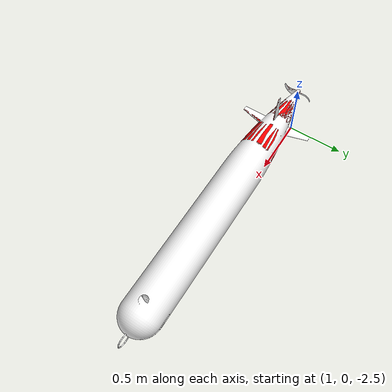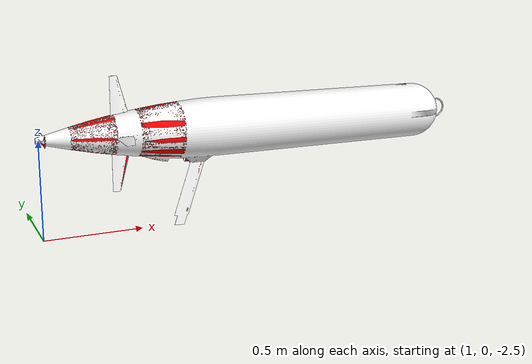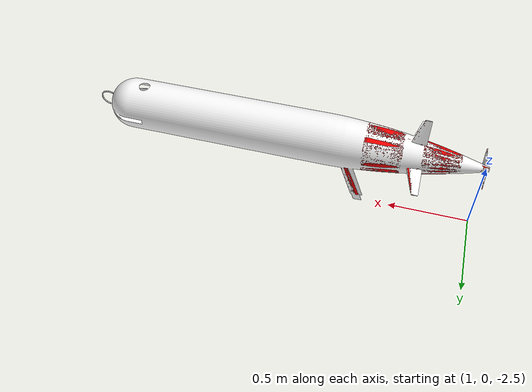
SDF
<sdf version="1.6">
  <world name="water_world">
    <!-- Ocean environment settings -->
    <scene>
      <ambient>0.4 0.4 0.4</ambient>
      <background>0.2 0.2 0.8</background>
      <shadows>false</shadows>
    </scene>

    <!-- Physics -->
    <physics name="1ms" type="ode">
      <max_step_size>0.001</max_step_size>
      <real_time_factor>1.0</real_time_factor>
    </physics>

    <!-- Essential plugins -->
    <plugin
      filename="libgazebo_ros_init.so"
      name="gazebo_ros_init">
    </plugin>

    <plugin
      filename="libgazebo_ros_factory.so"
      name="gazebo_ros_factory">
    </plugin>

    <!-- Buoyancy plugin for underwater physics -->
    <plugin
      filename="libBuoyancyPlugin.so"
      name="buoyancy_plugin">
      <uniform_fluid_density>1000</uniform_fluid_density>
    </plugin>

    <!-- Add the existing tethys equipped underwater vehicle -->
    <include>
      <pose>2 0 -2 0 0 0</pose>
      <uri>/home/baldik/gazebo_maritime/models/tethys_equipped</uri>
    </include>

    <!-- Light source for underwater visibility -->
    <light type="point" name="underwater_light_1">
      <pose>0 0 -1 0 0 0</pose>
      <diffuse>0.3 0.3 0.5</diffuse>
      <specular>0.1 0.1 0.1</specular>
      <attenuation>
        <range>20</range>
        <linear>0.1</linear>
        <quadratic>0.01</quadratic>
      </attenuation>
    </light>

    <light type="point" name="underwater_light_2">
      <pose>5 5 -3 0 0 0</pose>
      <diffuse>0.2 0.2 0.4</diffuse>
      <specular>0.1 0.1 0.1</specular>
      <attenuation>
        <range>15</range>
        <linear>0.1</linear>
        <quadratic>0.01</quadratic>
      </attenuation>
    </light>
  </world>
</sdf>

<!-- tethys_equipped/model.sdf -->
<sdf version="1.9">
  <model name="tethys">
    <include merge="true">
      <uri>/home/baldik/gazebo_maritime/models/tethys/model.sdf</uri>
    </include>

    <!-- Hydrodynamic system-->
    <plugin
      filename="ignition-gazebo-hydrodynamics-system"
      name="ignition::gazebo::systems::Hydrodynamics">
        <link_name>base_link</link_name>
        <xDotU>-4.876161</xDotU>
        <yDotV>-126.324739</yDotV>
        <zDotW>-126.324739</zDotW>
        <kDotP>0</kDotP>
        <mDotQ>-33.46</mDotQ>
        <nDotR>-33.46</nDotR>
        <xUU>-6.2282</xUU>
        <xU>0</xU>
        <yVV>-601.27</yVV>
        <yV>0</yV>
        <zWW>-601.27</zWW>
        <zW>0</zW>
        <kPP>-0.1916</kPP>
        <kP>0</kP>
        <mQQ>-632.698957</mQQ>
        <mQ>0</mQ>
        <nRR>-632.698957</nRR>
        <nR>0</nR>
    </plugin>
  </model>
</sdf>

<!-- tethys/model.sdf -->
<sdf version="1.6">
  <model name="tethys">
    <!-- Body -->
    <link name="base_link">
      <inertial>
        <mass>147.8671</mass>
        <inertia>
          <ixx>3.000000</ixx>
          <ixy>0</ixy>
          <ixz>0</ixz>
          <iyy>41.980233</iyy>
          <iyz>0</iyz>
          <izz>41.980233</izz>
        </inertia>
      </inertial>

      <collision name="main_body_buoyancy">
        <pose>0 0 0 0 0 0</pose>
        <geometry>
          <box>
            <size>2 0.3 0.246445166667</size>
          </box>
        </geometry>
      </collision>

      <visual name="visual">
        <geometry>
          <mesh>
            <uri>meshes/tethys.dae</uri>
            <submesh>
              <name>Body</name>
              <center>false</center>
            </submesh>
          </mesh>
        </geometry>
        <material>
          <diffuse>1.0 1.0 1.0</diffuse>
          <specular>1.0 1.0 1.0</specular>
          <pbr>
            <metal>
              <albedo_map>materials/textures/Tethys_Albedo.png</albedo_map>
              <normal_map>materials/textures/Tethys_Normal.png</normal_map>
              <metalness_map>materials/textures/Tethys_Metalness.png</metalness_map>
              <roughness_map>materials/textures/Tethys_Roughness.png</roughness_map>
            </metal>
          </pbr>
          <script>
            <uri>materials/scripts/</uri>
            <uri>materials/textures/</uri>
            <name>tethys/Tethys_Diffuse</name>
          </script>
        </material>
      </visual>
    </link>

    <!-- Horizontal fins -->
    <link name="horizontal_fins">
      <pose>1.05 0 0 0 0 0</pose>
      <inertial>
        <pose>0 0 0 1.57 0 0.5</pose>
        <mass>0.2</mass>
        <inertia>
          <ixx>0.0007924568755</ixx>
          <ixy>-0.0000000002674</ixy>
          <ixz>0.0003978158176</ixz>
          <iyy>0.0010546736475</iyy>
          <iyz>-0.0000000006729</iyz>
          <izz>0.0002633558262</izz>
        </inertia>
      </inertial>

      <collision name="collision">
        <geometry>
          <box>
            <size>0.1 0.1 0.02</size>
          </box>
        </geometry>
      </collision>

      <visual name= "visual">
        <pose>-1.05 0 0 0 0 0</pose>
        <geometry>
          <mesh>
            <uri>meshes/tethys.dae</uri>
            <submesh>
              <name>Fins_Horizontal</name>
              <center>false</center>
            </submesh>
          </mesh>
        </geometry>
        <material>
          <ambient>1 0 0 1</ambient>
          <diffuse>1 0 0 1</diffuse>
          <specular>1 0 0 1</specular>
        </material>
      </visual>
    </link>

    <!-- Vertical fins -->
    <link name="vertical_fins">
      <pose>1.05 0 0 0 0 0</pose>
      <inertial>
        <mass>0.2</mass>
        <inertia>
          <ixx>0.0007924568755</ixx>
          <ixy>-0.0000000002674</ixy>
          <ixz>0.0003978158176</ixz>
          <iyy>0.0010546736475</iyy>
          <iyz>-0.0000000006729</iyz>
          <izz>0.0002633558262</izz>
        </inertia>
      </inertial>

      <collision name="collision">
         <geometry>
          <box>
            <size>0.1 0.1 0.02</size>
          </box>
        </geometry>
      </collision>

      <visual name= "visual">
        <pose>-1.05 0 0 0 0 0</pose>
        <geometry>
          <mesh>
            <uri>meshes/tethys.dae</uri>
            <submesh>
              <name>Fins_vertical</name>
              <center>false</center>
            </submesh>
          </mesh>
        </geometry>
        <material>
          <ambient>1 0 0 1</ambient>
          <diffuse>1 0 0 1</diffuse>
          <specular>1 0 0 1</specular>
        </material>
      </visual>
    </link>

    <!-- Propeller -->
    <link name="propeller">
      <pose>1.43162 0 0 0 0 0</pose>
      <inertial>
        <pose>0 0 0 0 0 0</pose>
        <mass>0.09</mass>
        <inertia>
          <ixx>0.000143971303</ixx>
          <ixy>0.000000000008</ixy>
          <ixz>-0.000000000224</ixz>
          <iyy>0.000140915448</iyy>
          <iyz>-0.000025236433</iyz>
          <izz>0.000033571862</izz>
        </inertia>
      </inertial>

      <collision name="collision">
        <geometry>
          <box>
            <size>0.03 0.1 0.03</size>
          </box>
        </geometry>
      </collision>

      <visual name= "visual">
        <pose>-1.43162 0 0 0 0 0</pose>
        <geometry>
          <mesh>
            <uri>meshes/tethys.dae</uri>
            <submesh>
              <name>Prop</name>
              <center>false</center>
            </submesh>
          </mesh>
        </geometry>
        <material>
          <ambient>0 0 0 1</ambient>
          <diffuse>0 0 0 1</diffuse>
          <specular>0 0 0 1</specular>
        </material>
      </visual>

    </link>

    <!-- Joints -->
    <joint name="horizontal_fins_joint" type="revolute">
      <pose>0 0 0 0 0 0</pose>
      <parent>base_link</parent>
      <child>horizontal_fins</child>
      <axis>
        <xyz>0 1 0</xyz>
        <limit>
          <lower>-0.261799</lower>
          <upper>0.261799</upper>
          <effort>-1</effort>
          <velocity>-1</velocity>
        </limit>
      </axis>
    </joint>

    <joint name="vertical_fins_joint" type="revolute">
      <pose>0 0 0 0 0 0</pose>
      <parent>base_link</parent>
      <child>vertical_fins</child>
      <axis>
        <xyz>0 0 1</xyz>
        <limit>
          <lower>-0.261799</lower>
          <upper>0.261799</upper>
          <effort>-1</effort>
          <velocity>-1</velocity>
        </limit>
      </axis>
    </joint>

    <joint name="propeller_joint" type="revolute">
      <pose>0 0 0 0 0 0</pose>
      <parent>base_link</parent>
      <child>propeller</child>
      <axis>
        <xyz>1 0 0</xyz>
        <limit>
          <lower>-1e+12</lower>
          <upper>1e+12</upper>
          <effort>-1</effort>
          <velocity>-1</velocity>
        </limit>
      </axis>
    </joint>
  </model>
</sdf>
